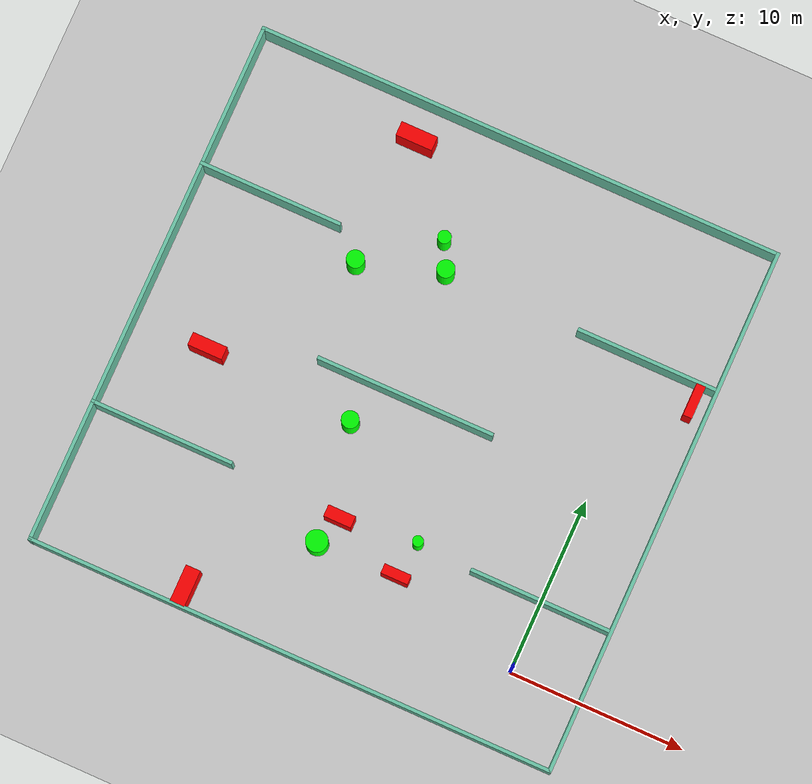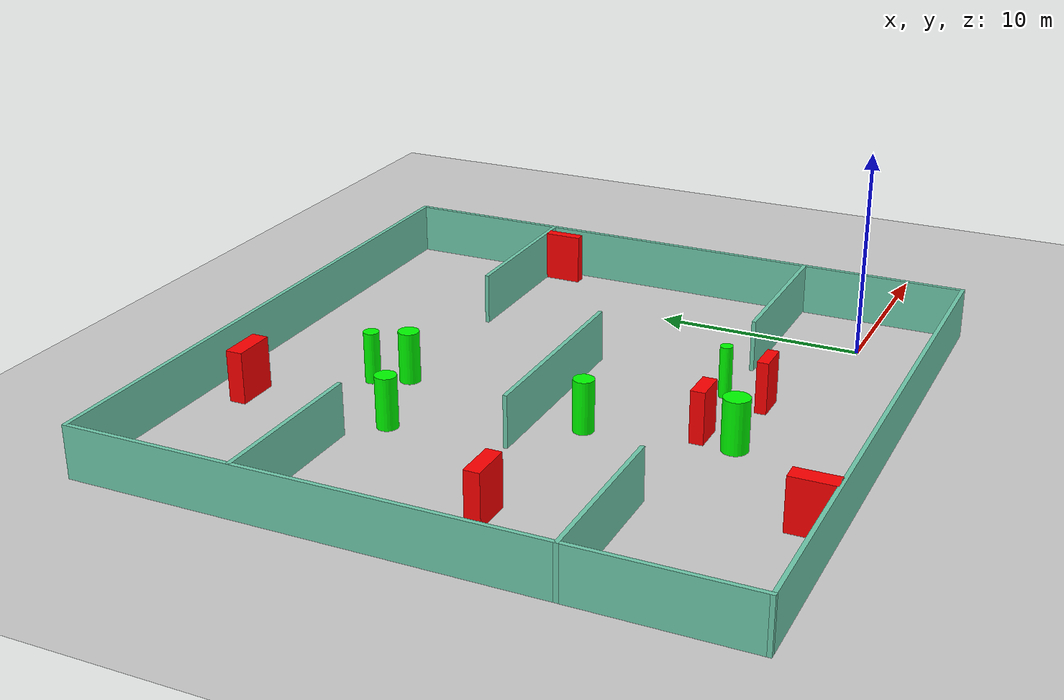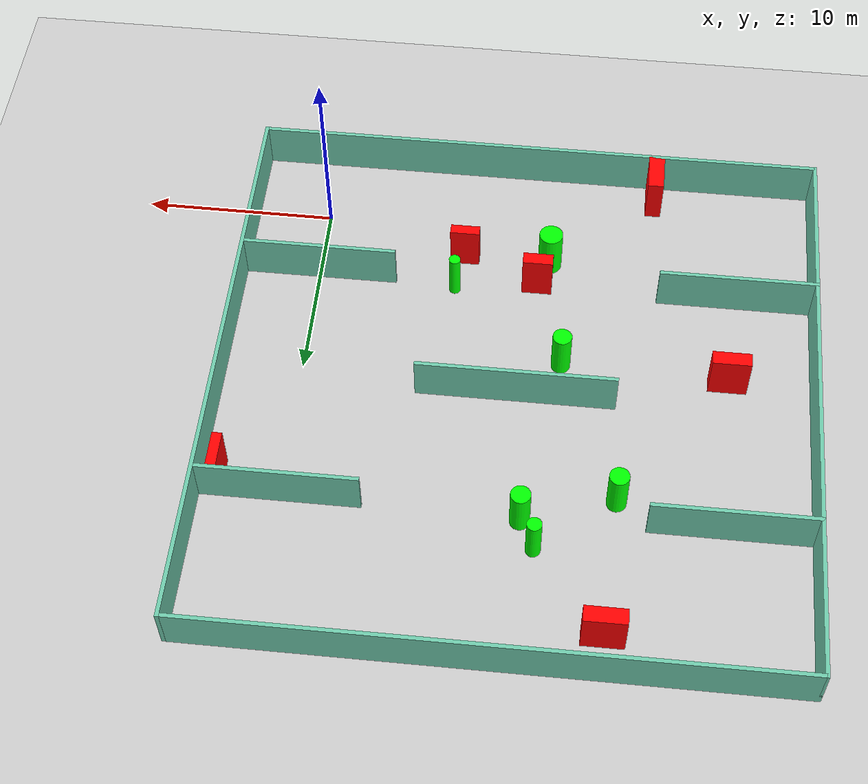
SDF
<sdf version="1.7">
 <world name="default">
  <light name="sun" type="directional">
   <pose>0 0 10 0 -0 0</pose>
   <diffuse>0.8 0.8 0.8 1</diffuse>
   <specular>0.2 0.2 0.2 1</specular>
   <attenuation>
    <range>1000</range>
    <constant>0.9</constant>
    <linear>0.01</linear>
    <quadratic>0.001</quadratic>
   </attenuation>
   <direction>-0.5 0.1 -0.9</direction>
   <spot><inner_angle>0</inner_angle><outer_angle>0</outer_angle><falloff>0</falloff></spot>
  </light>
  <model name="ground_plane">
   <static>1</static>
   <link name="link">
    <collision name="collision">
     <geometry><plane><normal>0 0 1</normal><size>100 100</size></plane></geometry>
     <surface>
      <contact><collide_bitmask>65535</collide_bitmask></contact>
      <friction><ode><mu>100</mu><mu2>50</mu2></ode></friction>
     </surface>
    </collision>
    <visual name="visual">
     <cast_shadows>0</cast_shadows>
     <geometry><plane><normal>0 0 1</normal><size>100 100</size></plane></geometry>
     <material>
      <script><uri>file://media/materials/scripts/gazebo.material</uri><name>Gazebo/Grey</name></script>
     </material>
    </visual>
   </link>
  </model>
  <gravity>0 0 -9.8</gravity>
  <magnetic_field>6e-06 2.3e-05 -4.2e-05</magnetic_field>
  <atmosphere type="adiabatic"/>
  <physics type="ode">
   <max_step_size>0.001</max_step_size>
   <real_time_factor>1</real_time_factor>
   <real_time_update_rate>1000</real_time_update_rate>
  </physics>
  <scene><ambient>0.4 0.4 0.4 1</ambient><background>0.7 0.7 0.7 1</background><shadows>1</shadows></scene>
  <spherical_coordinates>
   <surface_model>EARTH_WGS84</surface_model>
   <latitude_deg>0</latitude_deg>
   <longitude_deg>0</longitude_deg>
   <elevation>0</elevation>
   <heading_deg>0</heading_deg>
  </spherical_coordinates>
  <model name="my_base_walls">
   <link name="Wall_10">
    <collision name="Wall_10_Collision">
     <geometry><box><size>8.2 0.2 2.5</size></box></geometry>
     <pose>0 0 1.25 0 -0 0</pose>
    </collision>
    <visual name="Wall_10_Visual">
     <pose>0 0 1.25 0 -0 0</pose>
     <geometry><box><size>8.2 0.2 2.5</size></box></geometry>
     <material>
      <script><uri>file://media/materials/scripts/gazebo.material</uri><name>Gazebo/Grey</name></script>
      <ambient>0.435294 0.796078 0.67451 1</ambient>
     </material>
     <meta><layer>0</layer></meta>
    </visual>
    <pose>-11 -7 0 0 -0 0</pose>
   </link>
   <link name="Wall_12">
    <collision name="Wall_12_Collision">
     <geometry><box><size>8.2 0.2 2.5</size></box></geometry>
     <pose>0 0 1.25 0 -0 0</pose>
    </collision>
    <visual name="Wall_12_Visual">
     <pose>0 0 1.25 0 -0 0</pose>
     <geometry><box><size>8.2 0.2 2.5</size></box></geometry>
     <material>
      <script><uri>file://media/materials/scripts/gazebo.material</uri><name>Gazebo/Grey</name></script>
      <ambient>0.435294 0.796078 0.67451 1</ambient>
     </material>
     <meta><layer>0</layer></meta>
    </visual>
    <pose>-11 7 0 0 -0 0</pose>
   </link>
   <link name="Wall_14">
    <collision name="Wall_14_Collision">
     <geometry><box><size>8.2 0.2 2.5</size></box></geometry>
     <pose>0 0 1.25 0 -0 0</pose>
    </collision>
    <visual name="Wall_14_Visual">
     <pose>0 0 1.25 0 -0 0</pose>
     <geometry><box><size>8.2 0.2 2.5</size></box></geometry>
     <material>
      <script><uri>file://media/materials/scripts/gazebo.material</uri><name>Gazebo/Grey</name></script>
      <ambient>0.435294 0.796078 0.67451 1</ambient>
     </material>
     <meta><layer>0</layer></meta>
    </visual>
    <pose>11 7 0 0 -0 3.14159</pose>
   </link>
   <link name="Wall_16">
    <collision name="Wall_16_Collision">
     <geometry><box><size>10.2 0.2 2.5</size></box></geometry>
     <pose>0 0 1.25 0 -0 0</pose>
    </collision>
    <visual name="Wall_16_Visual">
     <pose>0 0 1.25 0 -0 0</pose>
     <geometry><box><size>10.2 0.2 2.5</size></box></geometry>
     <material>
      <script><uri>file://media/materials/scripts/gazebo.material</uri><name>Gazebo/Grey</name></script>
      <ambient>0.435294 0.796078 0.67451 1</ambient>
     </material>
     <meta><layer>0</layer></meta>
    </visual>
    <pose>0 0 0 0 -0 3.14159</pose>
   </link>
   <link name="Wall_2">
    <collision name="Wall_2_Collision">
     <geometry><box><size>30.2 0.2 2.5</size></box></geometry>
     <pose>0 0 1.25 0 -0 0</pose>
    </collision>
    <visual name="Wall_2_Visual">
     <pose>0 0 1.25 0 -0 0</pose>
     <geometry><box><size>30.2 0.2 2.5</size></box></geometry>
     <material>
      <script><uri>file://media/materials/scripts/gazebo.material</uri><name>Gazebo/Grey</name></script>
      <ambient>0.435294 0.796078 0.67451 1</ambient>
     </material>
     <meta><layer>0</layer></meta>
    </visual>
    <pose>0 -15 0 0 -0 3.14159</pose>
   </link>
   <link name="Wall_3">
    <collision name="Wall_3_Collision">
     <geometry><box><size>30.2 0.2 2.5</size></box></geometry>
     <pose>0 0 1.25 0 -0 0</pose>
    </collision>
    <visual name="Wall_3_Visual">
     <pose>0 0 1.25 0 -0 0</pose>
     <geometry><box><size>30.2 0.2 2.5</size></box></geometry>
     <material>
      <script><uri>file://media/materials/scripts/gazebo.material</uri><name>Gazebo/Grey</name></script>
      <ambient>0.435294 0.796078 0.67451 1</ambient>
     </material>
     <meta><layer>0</layer></meta>
    </visual>
    <pose>-15 0 0 0 -0 1.5708</pose>
   </link>
   <link name="Wall_4">
    <collision name="Wall_4_Collision">
     <geometry><box><size>30.2 0.2 2.5</size></box></geometry>
     <pose>0 0 1.25 0 -0 0</pose>
    </collision>
    <visual name="Wall_4_Visual">
     <pose>0 0 1.25 0 -0 0</pose>
     <geometry><box><size>30.2 0.2 2.5</size></box></geometry>
     <material>
      <script><uri>file://media/materials/scripts/gazebo.material</uri><name>Gazebo/Grey</name></script>
      <ambient>0.435294 0.796078 0.67451 1</ambient>
     </material>
     <meta><layer>0</layer></meta>
    </visual>
    <pose>0 15 0 0 -0 0</pose>
   </link>
   <link name="Wall_6">
    <collision name="Wall_6_Collision">
     <geometry><box><size>30.2 0.2 2.5</size></box></geometry>
     <pose>0 0 1.25 0 -0 0</pose>
    </collision>
    <visual name="Wall_6_Visual">
     <pose>0 0 1.25 0 -0 0</pose>
     <geometry><box><size>30.2 0.2 2.5</size></box></geometry>
     <material>
      <script><uri>file://media/materials/scripts/gazebo.material</uri><name>Gazebo/Grey</name></script>
      <ambient>0.435294 0.796078 0.67451 1</ambient>
     </material>
     <meta><layer>0</layer></meta>
    </visual>
    <pose>15 0 0 0 -0 1.5708</pose>
   </link>
   <link name="Wall_8">
    <collision name="Wall_8_Collision">
     <geometry><box><size>8.2 0.2 2.5</size></box></geometry>
     <pose>0 0 1.25 0 -0 0</pose>
    </collision>
    <visual name="Wall_8_Visual">
     <pose>0 0 1.25 0 -0 0</pose>
     <geometry><box><size>8.2 0.2 2.5</size></box></geometry>
     <material>
      <script><uri>file://media/materials/scripts/gazebo.material</uri><name>Gazebo/Grey</name></script>
      <ambient>0.435294 0.796078 0.67451 1</ambient>
     </material>
     <meta><layer>0</layer></meta>
    </visual>
    <pose>11 -7 0 0 -0 3.14159</pose>
   </link>
   <static>1</static>
   <pose>-11 11 0 0 -0 0</pose>
  </model>
  <model name="cylinder1">
   <static>1</static>
   <link name="link">
    <inertial>
     <mass>1</mass>
     <inertia><ixx>0.5</ixx><ixy>0</ixy><ixz>0</ixz><iyy>0.5</iyy><iyz>0</iyz><izz>1</izz></inertia>
    </inertial>
    <collision name="collision">
     <geometry><cylinder><radius>0.3031700109939453</radius><length>2.5</length></cylinder></geometry>
    </collision>
    <visual name="visual">
     <geometry><cylinder><radius>0.3031700109939453</radius><length>2.5</length></cylinder></geometry>
     <material>
      <ambient>0 1 0 1</ambient>
      <diffuse>0 1 0 1</diffuse>
      <specular>0.1 0.1 0.1 1</specular>
      <emissive>0 0 0 0</emissive>
     </material>
    </visual>
   </link>
   <pose>-7.2465325648251415 4.226056697674092 1.25 0 0 0</pose>
  </model>
  <model name="cylinder2">
   <static>1</static>
   <link name="link">
    <inertial>
     <mass>1</mass>
     <inertia><ixx>0.5</ixx><ixy>0</ixy><ixz>0</ixz><iyy>0.5</iyy><iyz>0</iyz><izz>1</izz></inertia>
    </inertial>
    <collision name="collision">
     <geometry><cylinder><radius>0.5006214447047244</radius><length>2.5</length></cylinder></geometry>
    </collision>
    <visual name="visual">
     <geometry><cylinder><radius>0.5006214447047244</radius><length>2.5</length></cylinder></geometry>
     <material>
      <ambient>0 1 0 1</ambient>
      <diffuse>0 1 0 1</diffuse>
      <specular>0.1 0.1 0.1 1</specular>
      <emissive>0 0 0 0</emissive>
     </material>
    </visual>
   </link>
   <pose>-11.808708514471673 18.08819385947928 1.25 0 0 0</pose>
  </model>
  <model name="cylinder3">
   <static>1</static>
   <link name="link">
    <inertial>
     <mass>1</mass>
     <inertia><ixx>0.5</ixx><ixy>0</ixy><ixz>0</ixz><iyy>0.5</iyy><iyz>0</iyz><izz>1</izz></inertia>
    </inertial>
    <collision name="collision">
     <geometry><cylinder><radius>0.502255265734156</radius><length>2.5</length></cylinder></geometry>
    </collision>
    <visual name="visual">
     <geometry><cylinder><radius>0.502255265734156</radius><length>2.5</length></cylinder></geometry>
     <material>
      <ambient>0 1 0 1</ambient>
      <diffuse>0 1 0 1</diffuse>
      <specular>0.1 0.1 0.1 1</specular>
      <emissive>0 0 0 0</emissive>
     </material>
    </visual>
   </link>
   <pose>-16.415057287283815 16.613135029695673 1.25 0 0 0</pose>
  </model>
  <model name="cylinder4">
   <static>1</static>
   <link name="link">
    <inertial>
     <mass>1</mass>
     <inertia><ixx>0.5</ixx><ixy>0</ixy><ixz>0</ixz><iyy>0.5</iyy><iyz>0</iyz><izz>1</izz></inertia>
    </inertial>
    <collision name="collision">
     <geometry><cylinder><radius>0.3738806209930985</radius><length>2.5</length></cylinder></geometry>
    </collision>
    <visual name="visual">
     <geometry><cylinder><radius>0.3738806209930985</radius><length>2.5</length></cylinder></geometry>
     <material>
      <ambient>0 1 0 1</ambient>
      <diffuse>0 1 0 1</diffuse>
      <specular>0.1 0.1 0.1 1</specular>
      <emissive>0 0 0 0</emissive>
     </material>
    </visual>
   </link>
   <pose>-12.573220058322082 19.626811962982764 1.25 0 0 0</pose>
  </model>
  <model name="cylinder5">
   <static>1</static>
   <link name="link">
    <inertial>
     <mass>1</mass>
     <inertia><ixx>0.5</ixx><ixy>0</ixy><ixz>0</ixz><iyy>0.5</iyy><iyz>0</iyz><izz>1</izz></inertia>
    </inertial>
    <collision name="collision">
     <geometry><cylinder><radius>0.617102004778409</radius><length>2.5</length></cylinder></geometry>
    </collision>
    <visual name="visual">
     <geometry><cylinder><radius>0.617102004778409</radius><length>2.5</length></cylinder></geometry>
     <material>
      <ambient>0 1 0 1</ambient>
      <diffuse>0 1 0 1</diffuse>
      <specular>0.1 0.1 0.1 1</specular>
      <emissive>0 0 0 0</emissive>
     </material>
    </visual>
   </link>
   <pose>-12.129718524051256 2.0599375890211107 1.25 0 0 0</pose>
  </model>
  <model name="cylinder6">
   <static>1</static>
   <link name="link">
    <inertial>
     <mass>1</mass>
     <inertia><ixx>0.5</ixx><ixy>0</ixy><ixz>0</ixz><iyy>0.5</iyy><iyz>0</iyz><izz>1</izz></inertia>
    </inertial>
    <collision name="collision">
     <geometry><cylinder><radius>0.48957676434048203</radius><length>2.5</length></cylinder></geometry>
    </collision>
    <visual name="visual">
     <geometry><cylinder><radius>0.48957676434048203</radius><length>2.5</length></cylinder></geometry>
     <material>
      <ambient>0 1 0 1</ambient>
      <diffuse>0 1 0 1</diffuse>
      <specular>0.1 0.1 0.1 1</specular>
      <emissive>0 0 0 0</emissive>
     </material>
    </visual>
   </link>
   <pose>-13.155319001996833 8.65850110303214 1.25 0 0 0</pose>
  </model>
  <model name="box1">
   <static>1</static>
   <link name="link">
    <inertial>
     <mass>1</mass>
     <inertia><ixx>0.083</ixx><ixy>0</ixy><ixz>0</ixz><iyy>0.083</iyy><iyz>0</iyz><izz>0.083</izz></inertia>
    </inertial>
    <collision name="collision">
     <geometry><box><size>1.9760870573350808 0.7315621245543878 2.5</size></box></geometry>
    </collision>
    <visual name="visual">
     <geometry><box><size>1.9760870573350808 0.7315621245543878 2.5</size></box></geometry>
     <material>
      <ambient>1 0 0 1</ambient>
      <diffuse>1 0 0 1</diffuse>
      <specular>0.1 0.1 0.1 1</specular>
      <emissive>0 0 0 0</emissive>
     </material>
    </visual>
    <sensor name="my_contact" type="contact">
     <contact><collision>box_collision</collision><topic>__default_topic__</topic></contact>
    </sensor>
   </link>
   <pose>-21.68364995170662 9.16039003610094 1.25 0 0 0</pose>
  </model>
  <model name="box2">
   <static>1</static>
   <link name="link">
    <inertial>
     <mass>1</mass>
     <inertia><ixx>0.083</ixx><ixy>0</ixy><ixz>0</ixz><iyy>0.083</iyy><iyz>0</iyz><izz>0.083</izz></inertia>
    </inertial>
    <collision name="collision">
     <geometry><box><size>0.835200214463034 2.0645435818433926 2.5</size></box></geometry>
    </collision>
    <visual name="visual">
     <geometry><box><size>0.835200214463034 2.0645435818433926 2.5</size></box></geometry>
     <material>
      <ambient>1 0 0 1</ambient>
      <diffuse>1 0 0 1</diffuse>
      <specular>0.1 0.1 0.1 1</specular>
      <emissive>0 0 0 0</emissive>
     </material>
    </visual>
    <sensor name="my_contact" type="contact">
     <contact><collision>box_collision</collision><topic>__default_topic__</topic></contact>
    </sensor>
   </link>
   <pose>-17.49119144931821 -2.9252915247492717 1.25 0 0 0</pose>
  </model>
  <model name="box3">
   <static>1</static>
   <link name="link">
    <inertial>
     <mass>1</mass>
     <inertia><ixx>0.083</ixx><ixy>0</ixy><ixz>0</ixz><iyy>0.083</iyy><iyz>0</iyz><izz>0.083</izz></inertia>
    </inertial>
    <collision name="collision">
     <geometry><box><size>0.5129579702800366 1.847965907114693 2.5</size></box></geometry>
    </collision>
    <visual name="visual">
     <geometry><box><size>0.5129579702800366 1.847965907114693 2.5</size></box></geometry>
     <material>
      <ambient>1 0 0 1</ambient>
      <diffuse>1 0 0 1</diffuse>
      <specular>0.1 0.1 0.1 1</specular>
      <emissive>0 0 0 0</emissive>
     </material>
    </visual>
    <sensor name="my_contact" type="contact">
     <contact><collision>box_collision</collision><topic>__default_topic__</topic></contact>
    </sensor>
   </link>
   <pose>3.088817471510392 16.995806743686142 1.25 0 0 0</pose>
  </model>
  <model name="box4">
   <static>1</static>
   <link name="link">
    <inertial>
     <mass>1</mass>
     <inertia><ixx>0.083</ixx><ixy>0</ixy><ixz>0</ixz><iyy>0.083</iyy><iyz>0</iyz><izz>0.083</izz></inertia>
    </inertial>
    <collision name="collision">
     <geometry><box><size>2.094419517340842 0.8028991378522968 2.5</size></box></geometry>
    </collision>
    <visual name="visual">
     <geometry><box><size>2.094419517340842 0.8028991378522968 2.5</size></box></geometry>
     <material>
      <ambient>1 0 0 1</ambient>
      <diffuse>1 0 0 1</diffuse>
      <specular>0.1 0.1 0.1 1</specular>
      <emissive>0 0 0 0</emissive>
     </material>
    </visual>
    <sensor name="my_contact" type="contact">
     <contact><collision>box_collision</collision><topic>__default_topic__</topic></contact>
    </sensor>
   </link>
   <pose>-16.14065563168939 23.99744361597702 1.25 0 0 0</pose>
  </model>
  <model name="box5">
   <static>1</static>
   <link name="link">
    <inertial>
     <mass>1</mass>
     <inertia><ixx>0.083</ixx><ixy>0</ixy><ixz>0</ixz><iyy>0.083</iyy><iyz>0</iyz><izz>0.083</izz></inertia>
    </inertial>
    <collision name="collision">
     <geometry><box><size>1.5666783962755262 0.665877478539635 2.5</size></box></geometry>
    </collision>
    <visual name="visual">
     <geometry><box><size>1.5666783962755262 0.665877478539635 2.5</size></box></geometry>
     <material>
      <ambient>1 0 0 1</ambient>
      <diffuse>1 0 0 1</diffuse>
      <specular>0.1 0.1 0.1 1</specular>
      <emissive>0 0 0 0</emissive>
     </material>
    </visual>
    <sensor name="my_contact" type="contact">
     <contact><collision>box_collision</collision><topic>__default_topic__</topic></contact>
    </sensor>
   </link>
   <pose>-11.564515081670812 3.7432479304261204 1.25 0 0 0</pose>
  </model>
  <model name="box6">
   <static>1</static>
   <link name="link">
    <inertial>
     <mass>1</mass>
     <inertia><ixx>0.083</ixx><ixy>0</ixy><ixz>0</ixz><iyy>0.083</iyy><iyz>0</iyz><izz>0.083</izz></inertia>
    </inertial>
    <collision name="collision">
     <geometry><box><size>1.5346808961124097 0.5441583118944978 2.5</size></box></geometry>
    </collision>
    <visual name="visual">
     <geometry><box><size>1.5346808961124097 0.5441583118944978 2.5</size></box></geometry>
     <material>
      <ambient>1 0 0 1</ambient>
      <diffuse>1 0 0 1</diffuse>
      <specular>0.1 0.1 0.1 1</specular>
      <emissive>0 0 0 0</emissive>
     </material>
    </visual>
    <sensor name="my_contact" type="contact">
     <contact><collision>box_collision</collision><topic>__default_topic__</topic></contact>
    </sensor>
   </link>
   <pose>-7.591802886470486 2.164883212711274 1.25 0 0 0</pose>
  </model>
 </world>
</sdf>
